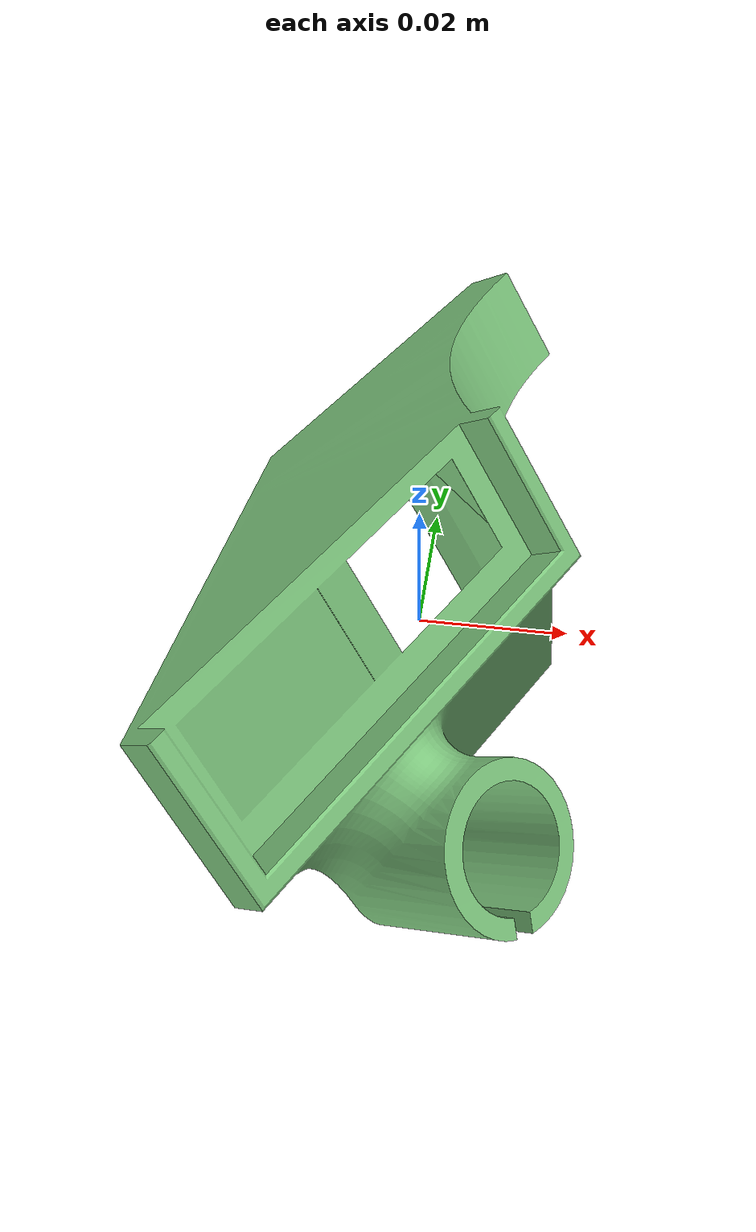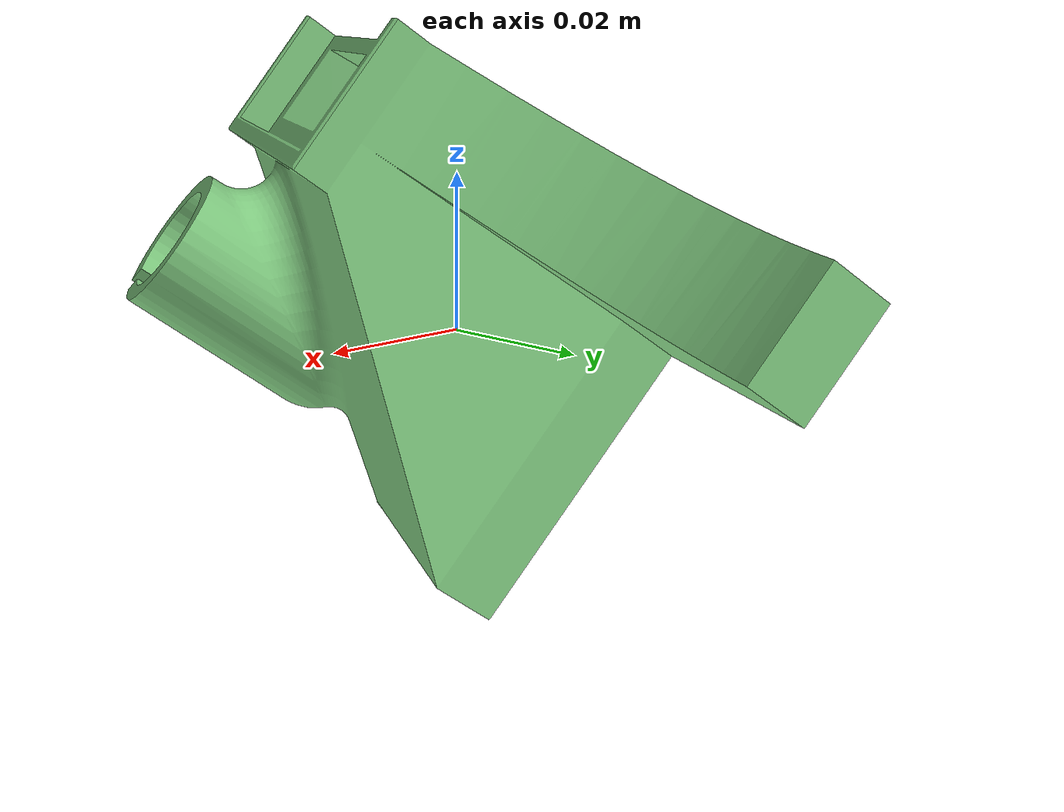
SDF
<sdf version="1.6">
  <model name="nozzle1_0">
    <link name="link">
      <pose frame="">-0 0 0.005 0 -0 0</pose>
      <inertial>
        <mass>0.5</mass>
        <inertia>
          <ixx>0.0008131475488333333</ixx>
          <ixy>0</ixy>
          <ixz>0</ixz>
          <iyy>0.0007019757363333334</iyy>
          <iyz>0</iyz>
          <izz>0.0002856241888333333</izz>
        </inertia>
        <pose frame="">7.9271213774820955e-19 -7.9271213774820955e-19 3.9635606887410478e-19 1.57 0 3.14</pose>
      </inertial>
      <self_collide>0</self_collide>
      <kinematic>0</kinematic>
      <gravity>1</gravity>
      <visual name="visual">
        <geometry>
          <mesh>
            <uri>/home/zisu/simulator/siemens_challenge/sim_world/toolbox/nozzle1_0.dae</uri>
          </mesh>
        </geometry>
        <pose frame="">0 0 0 0 -0 0</pose>
        <transparency>0</transparency>
        <cast_shadows>0</cast_shadows>
      </visual>
      <collision name="collision">
        <laser_retro>0</laser_retro>
        <max_contacts>10</max_contacts>
        <pose frame="">7.9271213774820955e-19 -7.9271213774820955e-19 3.9635606887410478e-19 1.57 0 3.14</pose>
        <geometry>
          <box>
            <size>0.045754 0.069004 0.121466</size>
          </box>
        </geometry>
        <surface>
          <friction>
            <ode>
              <mu>1</mu>
              <mu2>1</mu2>
              <fdir1>0 0 0</fdir1>
              <slip1>0</slip1>
              <slip2>0</slip2>
            </ode>
            <torsional>
              <coefficient>1</coefficient>
              <patch_radius>0</patch_radius>
              <surface_radius>0.05</surface_radius>
              <use_patch_radius>0</use_patch_radius>
              <ode>
                <slip>0</slip>
              </ode>
            </torsional>
          </friction>
          <bounce>
            <restitution_coefficient>0</restitution_coefficient>
            <threshold>1e+06</threshold>
          </bounce>
          <contact>
            <collide_without_contact>0</collide_without_contact>
            <collide_without_contact_bitmask>1</collide_without_contact_bitmask>
            <collide_bitmask>1</collide_bitmask>
            <ode>
              <soft_cfm>0</soft_cfm>
              <soft_erp>0.2</soft_erp>
              <kp>100000</kp>
              <kd>1</kd>
              <max_vel>1</max_vel>
              <min_depth>0.001</min_depth>
            </ode>
            <bullet>
              <split_impulse>1</split_impulse>
              <split_impulse_penetration_threshold>-0.01</split_impulse_penetration_threshold>
              <soft_cfm>0</soft_cfm>
              <soft_erp>0.2</soft_erp>
              <kp>100000</kp>
              <kd>1</kd>
            </bullet>
          </contact>
        </surface>
      </collision>
    </link>
    <static>0</static>
    <allow_auto_disable>1</allow_auto_disable>
  </model>
</sdf>
